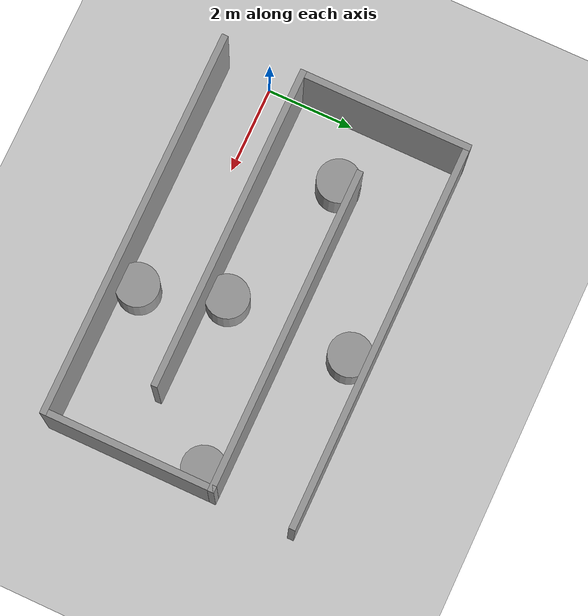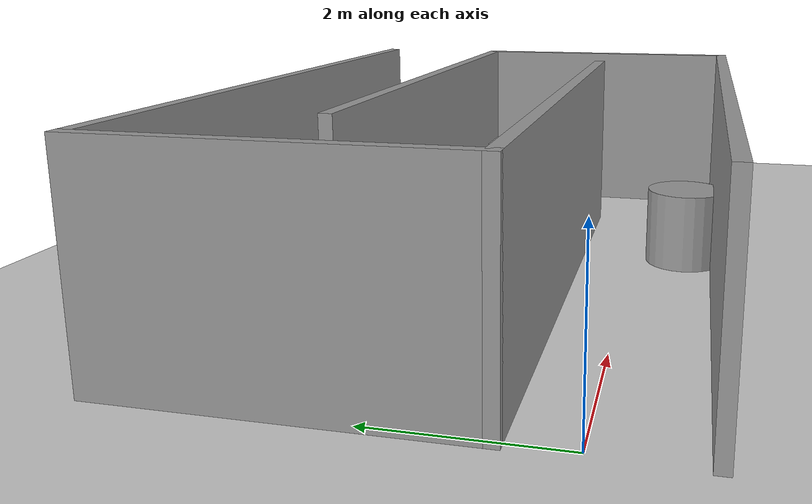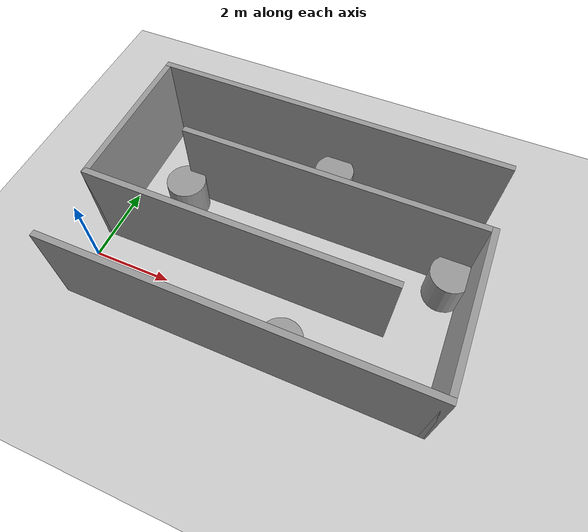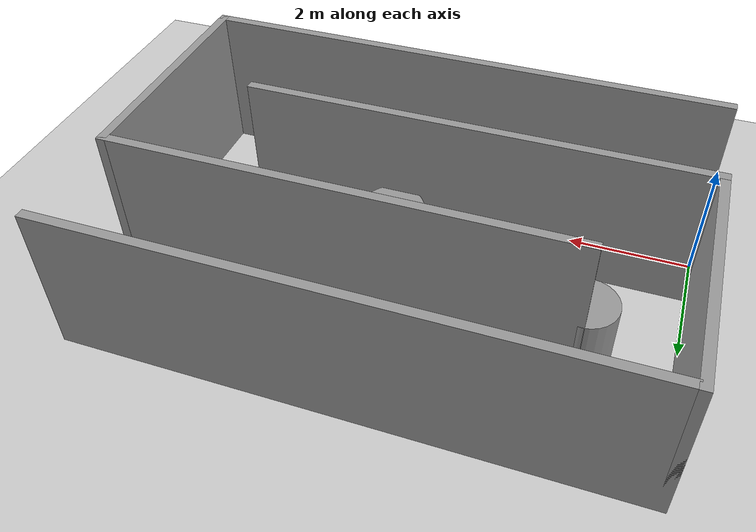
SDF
<sdf version="1.6">
 <world name="default">
  <light name="sun" type="directional">
   <pose>0 0 10 0 -0 0</pose>
   <diffuse>0.8 0.8 0.8 1</diffuse>
   <specular>0.2 0.2 0.2 1</specular>
   <attenuation>
    <range>1000</range>
    <constant>0.9</constant>
    <linear>0.01</linear>
    <quadratic>0.001</quadratic>
   </attenuation>
   <direction>-0.5 0.1 -0.9</direction>
  </light>
  <model name="ground_plane">
   <static>1</static>
   <link name="link">
    <collision name="collision">
     <geometry><plane><normal>0 0 1</normal><size>100 100</size></plane></geometry>
     <surface>
      <contact><collide_bitmask>65535</collide_bitmask></contact>
      <friction><ode><mu>100</mu><mu2>50</mu2></ode></friction>
     </surface>
    </collision>
    <visual name="visual">
     <cast_shadows>0</cast_shadows>
     <geometry><plane><normal>0 0 1</normal><size>100 100</size></plane></geometry>
     <material>
      <script><uri>file://media/materials/scripts/gazebo.material</uri><name>Gazebo/Grey</name></script>
     </material>
    </visual>
   </link>
  </model>
  <gravity>0 0 -9.8</gravity>
  <magnetic_field>6e-06 2.3e-05 -4.2e-05</magnetic_field>
  <atmosphere type="adiabatic"/>
  <physics name="default_physics" default="0" type="ode">
   <max_step_size>0.001</max_step_size>
   <real_time_factor>1</real_time_factor>
   <real_time_update_rate>1000</real_time_update_rate>
  </physics>
  <scene><ambient>0.4 0.4 0.4 1</ambient><background>0.7 0.7 0.7 1</background><shadows>1</shadows></scene>
  <audio><device>default</device></audio>
  <spherical_coordinates>
   <surface_model>EARTH_WGS84</surface_model>
   <latitude_deg>0</latitude_deg>
   <longitude_deg>0</longitude_deg>
   <elevation>0</elevation>
   <heading_deg>0</heading_deg>
  </spherical_coordinates>
  <model name="230103_0">
   <pose>4.38732 1.74446 0 0 -0 0</pose>
   <link name="Wall_42">
    <collision name="Wall_42_Collision">
     <geometry><box><size>9 0.15 2.5</size></box></geometry>
     <pose>0 0 1.25 0 -0 0</pose>
    </collision>
    <visual name="Wall_42_Visual">
     <pose>0 0 1.25 0 -0 0</pose>
     <geometry><box><size>9 0.15 2.5</size></box></geometry>
     <material>
      <script><uri>file://media/materials/scripts/gazebo.material</uri><name>Gazebo/Grey</name></script>
      <ambient>1 1 1 1</ambient>
     </material>
     <meta><layer>0</layer></meta>
    </visual>
    <pose>0 -2.85 0 0 -0 0</pose>
   </link>
   <link name="Wall_66">
    <collision name="Wall_66_Collision">
     <geometry><box><size>4 0.15 2.5</size></box></geometry>
     <pose>0 0 1.25 0 -0 0</pose>
    </collision>
    <visual name="Wall_66_Visual">
     <pose>0 0 1.25 0 -0 0</pose>
     <geometry><box><size>4 0.15 2.5</size></box></geometry>
     <material>
      <script><uri>file://media/materials/scripts/gazebo.material</uri><name>Gazebo/Grey</name></script>
      <ambient>1 1 1 1</ambient>
     </material>
     <meta><layer>0</layer></meta>
    </visual>
    <pose>4.425 -0.925 0 0 -0 1.5708</pose>
   </link>
   <link name="Wall_67">
    <collision name="Wall_67_Collision">
     <geometry><box><size>7.5 0.15 2.5</size></box></geometry>
     <pose>0 0 1.25 0 -0 0</pose>
    </collision>
    <visual name="Wall_67_Visual">
     <pose>0 0 1.25 0 -0 0</pose>
     <geometry><box><size>7.5 0.15 2.5</size></box></geometry>
     <material>
      <script><uri>file://media/materials/scripts/gazebo.material</uri><name>Gazebo/Grey</name></script>
      <ambient>1 1 1 1</ambient>
     </material>
     <meta><layer>0</layer></meta>
    </visual>
    <pose>0.75 1 0 0 -0 3.14159</pose>
   </link>
   <link name="Wall_70">
    <collision name="Wall_70_Collision">
     <geometry><box><size>4 0.15 2.5</size></box></geometry>
     <pose>0 0 1.25 0 -0 0</pose>
    </collision>
    <visual name="Wall_70_Visual">
     <pose>0 0 1.25 0 -0 0</pose>
     <geometry><box><size>4 0.15 2.5</size></box></geometry>
     <material>
      <script><uri>file://media/materials/scripts/gazebo.material</uri><name>Gazebo/Grey</name></script>
      <ambient>1 1 1 1</ambient>
     </material>
     <meta><layer>0</layer></meta>
    </visual>
    <pose>-4.425 0.925 0 0 -0 1.5708</pose>
   </link>
   <link name="Wall_71">
    <collision name="Wall_71_Collision">
     <geometry><box><size>9 0.15 2.5</size></box></geometry>
     <pose>0 0 1.25 0 -0 0</pose>
    </collision>
    <visual name="Wall_71_Visual">
     <pose>0 0 1.25 0 -0 0</pose>
     <geometry><box><size>9 0.15 2.5</size></box></geometry>
     <material>
      <script><uri>file://media/materials/scripts/gazebo.material</uri><name>Gazebo/Grey</name></script>
      <ambient>1 1 1 1</ambient>
     </material>
     <meta><layer>0</layer></meta>
    </visual>
    <pose>0 2.85 0 0 -0 0</pose>
   </link>
   <link name="Wall_74">
    <collision name="Wall_74_Collision">
     <geometry><box><size>7.5 0.15 2.5</size></box></geometry>
     <pose>0 0 1.25 0 -0 0</pose>
    </collision>
    <visual name="Wall_74_Visual">
     <pose>0 0 1.25 0 -0 0</pose>
     <geometry><box><size>7.5 0.15 2.5</size></box></geometry>
     <material>
      <script><uri>file://media/materials/scripts/gazebo.material</uri><name>Gazebo/Grey</name></script>
      <ambient>1 1 1 1</ambient>
     </material>
     <meta><layer>0</layer></meta>
    </visual>
    <pose>-0.75 -1 0 0 -0 0</pose>
   </link>
   <static>1</static>
  </model>
  <model name="unit_cylinder">
   <pose>1.44337 2.32557 0.5 0 -0 0</pose>
   <link name="link">
    <inertial>
     <mass>1</mass>
     <inertia><ixx>0.145833</ixx><ixy>0</ixy><ixz>0</ixz><iyy>0.145833</iyy><iyz>0</iyz><izz>0.125</izz></inertia>
    </inertial>
    <collision name="collision">
     <geometry><cylinder><radius>0.5</radius><length>1</length></cylinder></geometry>
    </collision>
    <visual name="visual">
     <geometry><cylinder><radius>0.5</radius><length>1</length></cylinder></geometry>
     <material>
      <script><name>Gazebo/Grey</name><uri>file://media/materials/scripts/gazebo.material</uri></script>
     </material>
    </visual>
   </link>
  </model>
  <model name="unit_cylinder_1">
   <pose>8.36155 2.30963 0.5 0 -0 0</pose>
   <link name="link">
    <inertial>
     <mass>1</mass>
     <inertia><ixx>0.145833</ixx><ixy>0</ixy><ixz>0</ixz><iyy>0.145833</iyy><iyz>0</iyz><izz>0.125</izz></inertia>
    </inertial>
    <collision name="collision">
     <geometry><cylinder><radius>0.5</radius><length>1</length></cylinder></geometry>
    </collision>
    <visual name="visual">
     <geometry><cylinder><radius>0.5</radius><length>1</length></cylinder></geometry>
     <material>
      <script><name>Gazebo/Grey</name><uri>file://media/materials/scripts/gazebo.material</uri></script>
     </material>
    </visual>
   </link>
  </model>
  <model name="unit_cylinder_2">
   <pose>4.77717 1.1991 0.5 0 -0 0</pose>
   <link name="link">
    <inertial>
     <mass>1</mass>
     <inertia><ixx>0.145833</ixx><ixy>0</ixy><ixz>0</ixz><iyy>0.145833</iyy><iyz>0</iyz><izz>0.125</izz></inertia>
    </inertial>
    <collision name="collision">
     <geometry><cylinder><radius>0.5</radius><length>1</length></cylinder></geometry>
    </collision>
    <visual name="visual">
     <geometry><cylinder><radius>0.5</radius><length>1</length></cylinder></geometry>
     <material>
      <script><name>Gazebo/Grey</name><uri>file://media/materials/scripts/gazebo.material</uri></script>
     </material>
    </visual>
   </link>
  </model>
  <model name="unit_cylinder_3">
   <pose>4.82554 4.13607 0.5 0 -0 0</pose>
   <link name="link">
    <inertial>
     <mass>1</mass>
     <inertia><ixx>0.145833</ixx><ixy>0</ixy><ixz>0</ixz><iyy>0.145833</iyy><iyz>0</iyz><izz>0.125</izz></inertia>
    </inertial>
    <collision name="collision">
     <geometry><cylinder><radius>0.5</radius><length>1</length></cylinder></geometry>
    </collision>
    <visual name="visual">
     <geometry><cylinder><radius>0.5</radius><length>1</length></cylinder></geometry>
     <material>
      <script><name>Gazebo/Grey</name><uri>file://media/materials/scripts/gazebo.material</uri></script>
     </material>
    </visual>
   </link>
  </model>
  <model name="unit_cylinder_0">
   <pose>5.36186 -0.673714 0.5 0 -0 0</pose>
   <link name="link">
    <inertial>
     <mass>1</mass>
     <inertia><ixx>0.145833</ixx><ixy>0</ixy><ixz>0</ixz><iyy>0.145833</iyy><iyz>0</iyz><izz>0.125</izz></inertia>
    </inertial>
    <collision name="collision">
     <geometry><cylinder><radius>0.5</radius><length>1</length></cylinder></geometry>
    </collision>
    <visual name="visual">
     <geometry><cylinder><radius>0.5</radius><length>1</length></cylinder></geometry>
     <material>
      <script><name>Gazebo/Grey</name><uri>file://media/materials/scripts/gazebo.material</uri></script>
     </material>
    </visual>
   </link>
  </model>
 </world>
</sdf>
